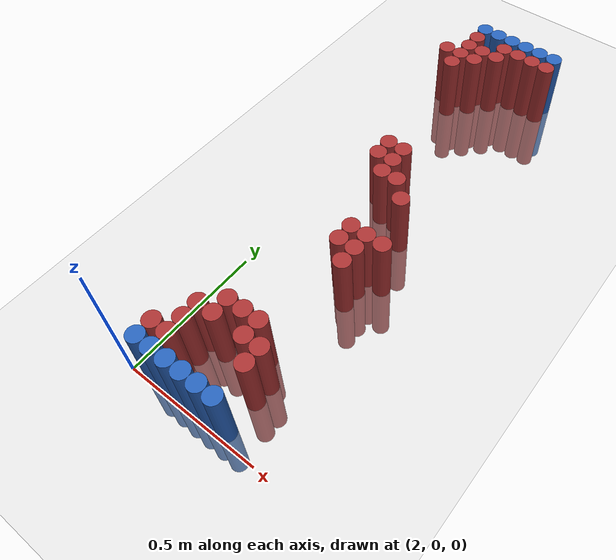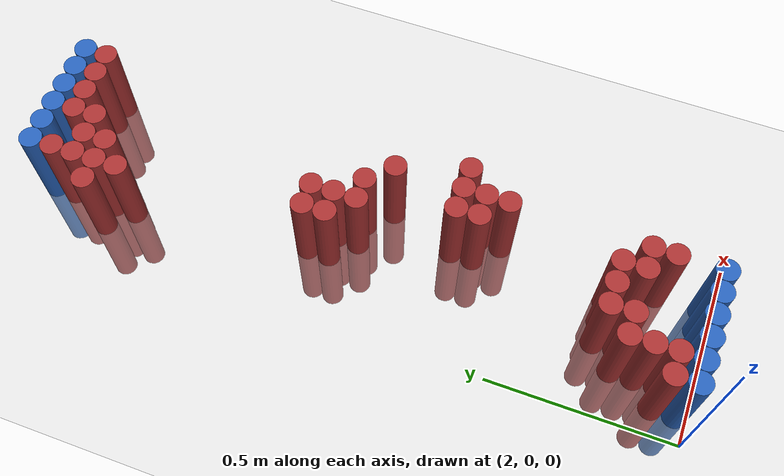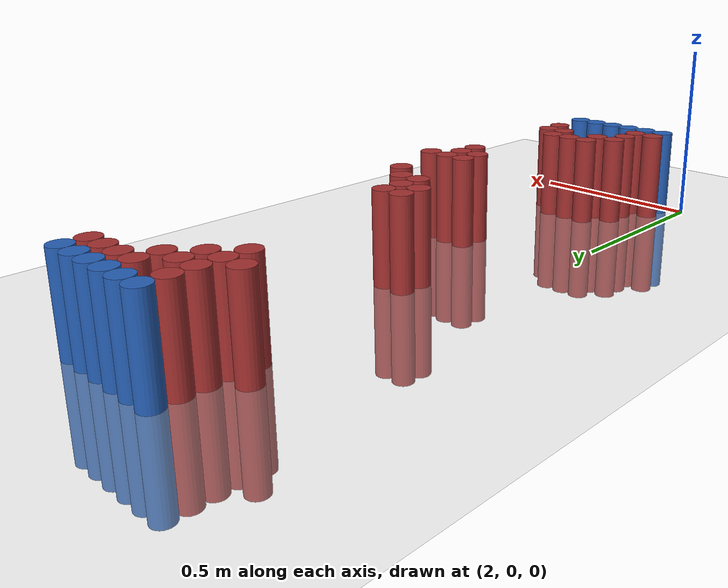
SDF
<sdf version="1.6">
 <world name="default">
  <model name="ground_plane">
   <static>1</static>
   <link name="link">
    <collision name="collision">
     <geometry><plane><normal>0 0 1</normal><size>100 100</size></plane></geometry>
     <surface><friction><ode><mu>100</mu><mu2>50</mu2></ode></friction></surface>
    </collision>
    <visual name="visual">
     <cast_shadows>0</cast_shadows>
     <geometry><plane><normal>0 0 1</normal><size>100 100</size></plane></geometry>
     <material>
      <script><uri>file://media/materials/scripts/gazebo.material</uri><name>Gazebo/Grey</name></script>
     </material>
    </visual>
   </link>
  </model>
  <model name="unit_cylinder_96">
   <static>1</static>
   <pose>2.130000 1.770000 0.000000 0.000000 0.000000 0.000000</pose>
   <link name="link">
    <inertial>
     <mass>1</mass>
     <inertia><ixx>0.145833</ixx><ixy>0</ixy><ixz>0</ixz><iyy>0.145833</iyy><iyz>0</iyz><izz>0.125</izz></inertia>
    </inertial>
    <collision name="collision">
     <geometry><cylinder><radius>0.030000</radius><length>0.5</length></cylinder></geometry>
    </collision>
    <visual name="visual">
     <geometry><cylinder><radius>0.030000</radius><length>0.5</length></cylinder></geometry>
     <material>
      <ambient>0.152000 0.379000 0.720000 1</ambient>
      <diffuse>0.152000 0.379000 0.720000 1</diffuse>
     </material>
     <material>
      <script><name>Gazebo/Grey</name><uri>file://media/materials/scripts/gazebo.material</uri></script>
     </material>
    </visual>
   </link>
  </model>
  <model name="unit_cylinder_97">
   <static>1</static>
   <pose>2.190000 1.770000 0.000000 0.000000 0.000000 0.000000</pose>
   <link name="link">
    <inertial>
     <mass>1</mass>
     <inertia><ixx>0.145833</ixx><ixy>0</ixy><ixz>0</ixz><iyy>0.145833</iyy><iyz>0</iyz><izz>0.125</izz></inertia>
    </inertial>
    <collision name="collision">
     <geometry><cylinder><radius>0.030000</radius><length>0.5</length></cylinder></geometry>
    </collision>
    <visual name="visual">
     <geometry><cylinder><radius>0.030000</radius><length>0.5</length></cylinder></geometry>
     <material>
      <ambient>0.152000 0.379000 0.720000 1</ambient>
      <diffuse>0.152000 0.379000 0.720000 1</diffuse>
     </material>
     <material>
      <script><name>Gazebo/Grey</name><uri>file://media/materials/scripts/gazebo.material</uri></script>
     </material>
    </visual>
   </link>
  </model>
  <model name="unit_cylinder_98">
   <static>1</static>
   <pose>2.250000 1.770000 0.000000 0.000000 0.000000 0.000000</pose>
   <link name="link">
    <inertial>
     <mass>1</mass>
     <inertia><ixx>0.145833</ixx><ixy>0</ixy><ixz>0</ixz><iyy>0.145833</iyy><iyz>0</iyz><izz>0.125</izz></inertia>
    </inertial>
    <collision name="collision">
     <geometry><cylinder><radius>0.030000</radius><length>0.5</length></cylinder></geometry>
    </collision>
    <visual name="visual">
     <geometry><cylinder><radius>0.030000</radius><length>0.5</length></cylinder></geometry>
     <material>
      <ambient>0.152000 0.379000 0.720000 1</ambient>
      <diffuse>0.152000 0.379000 0.720000 1</diffuse>
     </material>
     <material>
      <script><name>Gazebo/Grey</name><uri>file://media/materials/scripts/gazebo.material</uri></script>
     </material>
    </visual>
   </link>
  </model>
  <model name="unit_cylinder_99">
   <static>1</static>
   <pose>2.310000 1.770000 0.000000 0.000000 0.000000 0.000000</pose>
   <link name="link">
    <inertial>
     <mass>1</mass>
     <inertia><ixx>0.145833</ixx><ixy>0</ixy><ixz>0</ixz><iyy>0.145833</iyy><iyz>0</iyz><izz>0.125</izz></inertia>
    </inertial>
    <collision name="collision">
     <geometry><cylinder><radius>0.030000</radius><length>0.5</length></cylinder></geometry>
    </collision>
    <visual name="visual">
     <geometry><cylinder><radius>0.030000</radius><length>0.5</length></cylinder></geometry>
     <material>
      <ambient>0.152000 0.379000 0.720000 1</ambient>
      <diffuse>0.152000 0.379000 0.720000 1</diffuse>
     </material>
     <material>
      <script><name>Gazebo/Grey</name><uri>file://media/materials/scripts/gazebo.material</uri></script>
     </material>
    </visual>
   </link>
  </model>
  <model name="unit_cylinder_100">
   <static>1</static>
   <pose>2.370000 1.770000 0.000000 0.000000 0.000000 0.000000</pose>
   <link name="link">
    <inertial>
     <mass>1</mass>
     <inertia><ixx>0.145833</ixx><ixy>0</ixy><ixz>0</ixz><iyy>0.145833</iyy><iyz>0</iyz><izz>0.125</izz></inertia>
    </inertial>
    <collision name="collision">
     <geometry><cylinder><radius>0.030000</radius><length>0.5</length></cylinder></geometry>
    </collision>
    <visual name="visual">
     <geometry><cylinder><radius>0.030000</radius><length>0.5</length></cylinder></geometry>
     <material>
      <ambient>0.152000 0.379000 0.720000 1</ambient>
      <diffuse>0.152000 0.379000 0.720000 1</diffuse>
     </material>
     <material>
      <script><name>Gazebo/Grey</name><uri>file://media/materials/scripts/gazebo.material</uri></script>
     </material>
    </visual>
   </link>
  </model>
  <model name="unit_cylinder_101">
   <static>1</static>
   <pose>2.430000 1.770000 0.000000 0.000000 0.000000 0.000000</pose>
   <link name="link">
    <inertial>
     <mass>1</mass>
     <inertia><ixx>0.145833</ixx><ixy>0</ixy><ixz>0</ixz><iyy>0.145833</iyy><iyz>0</iyz><izz>0.125</izz></inertia>
    </inertial>
    <collision name="collision">
     <geometry><cylinder><radius>0.030000</radius><length>0.5</length></cylinder></geometry>
    </collision>
    <visual name="visual">
     <geometry><cylinder><radius>0.030000</radius><length>0.5</length></cylinder></geometry>
     <material>
      <ambient>0.152000 0.379000 0.720000 1</ambient>
      <diffuse>0.152000 0.379000 0.720000 1</diffuse>
     </material>
     <material>
      <script><name>Gazebo/Grey</name><uri>file://media/materials/scripts/gazebo.material</uri></script>
     </material>
    </visual>
   </link>
  </model>
  <model name="unit_cylinder_125">
   <static>1</static>
   <pose>2.130000 1.710000 0.000000 0.000000 0.000000 0.000000</pose>
   <link name="link">
    <inertial>
     <mass>1</mass>
     <inertia><ixx>0.145833</ixx><ixy>0</ixy><ixz>0</ixz><iyy>0.145833</iyy><iyz>0</iyz><izz>0.125</izz></inertia>
    </inertial>
    <collision name="collision">
     <geometry><cylinder><radius>0.030000</radius><length>0.5</length></cylinder></geometry>
    </collision>
    <visual name="visual">
     <geometry><cylinder><radius>0.030000</radius><length>0.5</length></cylinder></geometry>
     <material>
      <ambient>0.648000 0.192000 0.192000 1</ambient>
      <diffuse>0.648000 0.192000 0.192000 1</diffuse>
     </material>
     <material>
      <script><name>Gazebo/Grey</name><uri>file://media/materials/scripts/gazebo.material</uri></script>
     </material>
    </visual>
   </link>
  </model>
  <model name="unit_cylinder_126">
   <static>1</static>
   <pose>2.250000 1.710000 0.000000 0.000000 0.000000 0.000000</pose>
   <link name="link">
    <inertial>
     <mass>1</mass>
     <inertia><ixx>0.145833</ixx><ixy>0</ixy><ixz>0</ixz><iyy>0.145833</iyy><iyz>0</iyz><izz>0.125</izz></inertia>
    </inertial>
    <collision name="collision">
     <geometry><cylinder><radius>0.030000</radius><length>0.5</length></cylinder></geometry>
    </collision>
    <visual name="visual">
     <geometry><cylinder><radius>0.030000</radius><length>0.5</length></cylinder></geometry>
     <material>
      <ambient>0.648000 0.192000 0.192000 1</ambient>
      <diffuse>0.648000 0.192000 0.192000 1</diffuse>
     </material>
     <material>
      <script><name>Gazebo/Grey</name><uri>file://media/materials/scripts/gazebo.material</uri></script>
     </material>
    </visual>
   </link>
  </model>
  <model name="unit_cylinder_127">
   <static>1</static>
   <pose>2.310000 1.710000 0.000000 0.000000 0.000000 0.000000</pose>
   <link name="link">
    <inertial>
     <mass>1</mass>
     <inertia><ixx>0.145833</ixx><ixy>0</ixy><ixz>0</ixz><iyy>0.145833</iyy><iyz>0</iyz><izz>0.125</izz></inertia>
    </inertial>
    <collision name="collision">
     <geometry><cylinder><radius>0.030000</radius><length>0.5</length></cylinder></geometry>
    </collision>
    <visual name="visual">
     <geometry><cylinder><radius>0.030000</radius><length>0.5</length></cylinder></geometry>
     <material>
      <ambient>0.648000 0.192000 0.192000 1</ambient>
      <diffuse>0.648000 0.192000 0.192000 1</diffuse>
     </material>
     <material>
      <script><name>Gazebo/Grey</name><uri>file://media/materials/scripts/gazebo.material</uri></script>
     </material>
    </visual>
   </link>
  </model>
  <model name="unit_cylinder_128">
   <static>1</static>
   <pose>2.370000 1.710000 0.000000 0.000000 0.000000 0.000000</pose>
   <link name="link">
    <inertial>
     <mass>1</mass>
     <inertia><ixx>0.145833</ixx><ixy>0</ixy><ixz>0</ixz><iyy>0.145833</iyy><iyz>0</iyz><izz>0.125</izz></inertia>
    </inertial>
    <collision name="collision">
     <geometry><cylinder><radius>0.030000</radius><length>0.5</length></cylinder></geometry>
    </collision>
    <visual name="visual">
     <geometry><cylinder><radius>0.030000</radius><length>0.5</length></cylinder></geometry>
     <material>
      <ambient>0.648000 0.192000 0.192000 1</ambient>
      <diffuse>0.648000 0.192000 0.192000 1</diffuse>
     </material>
     <material>
      <script><name>Gazebo/Grey</name><uri>file://media/materials/scripts/gazebo.material</uri></script>
     </material>
    </visual>
   </link>
  </model>
  <model name="unit_cylinder_129">
   <static>1</static>
   <pose>2.430000 1.710000 0.000000 0.000000 0.000000 0.000000</pose>
   <link name="link">
    <inertial>
     <mass>1</mass>
     <inertia><ixx>0.145833</ixx><ixy>0</ixy><ixz>0</ixz><iyy>0.145833</iyy><iyz>0</iyz><izz>0.125</izz></inertia>
    </inertial>
    <collision name="collision">
     <geometry><cylinder><radius>0.030000</radius><length>0.5</length></cylinder></geometry>
    </collision>
    <visual name="visual">
     <geometry><cylinder><radius>0.030000</radius><length>0.5</length></cylinder></geometry>
     <material>
      <ambient>0.648000 0.192000 0.192000 1</ambient>
      <diffuse>0.648000 0.192000 0.192000 1</diffuse>
     </material>
     <material>
      <script><name>Gazebo/Grey</name><uri>file://media/materials/scripts/gazebo.material</uri></script>
     </material>
    </visual>
   </link>
  </model>
  <model name="unit_cylinder_144">
   <static>1</static>
   <pose>2.130000 1.650000 0.000000 0.000000 0.000000 0.000000</pose>
   <link name="link">
    <inertial>
     <mass>1</mass>
     <inertia><ixx>0.145833</ixx><ixy>0</ixy><ixz>0</ixz><iyy>0.145833</iyy><iyz>0</iyz><izz>0.125</izz></inertia>
    </inertial>
    <collision name="collision">
     <geometry><cylinder><radius>0.030000</radius><length>0.5</length></cylinder></geometry>
    </collision>
    <visual name="visual">
     <geometry><cylinder><radius>0.030000</radius><length>0.5</length></cylinder></geometry>
     <material>
      <ambient>0.648000 0.192000 0.192000 1</ambient>
      <diffuse>0.648000 0.192000 0.192000 1</diffuse>
     </material>
     <material>
      <script><name>Gazebo/Grey</name><uri>file://media/materials/scripts/gazebo.material</uri></script>
     </material>
    </visual>
   </link>
  </model>
  <model name="unit_cylinder_145">
   <static>1</static>
   <pose>2.190000 1.650000 0.000000 0.000000 0.000000 0.000000</pose>
   <link name="link">
    <inertial>
     <mass>1</mass>
     <inertia><ixx>0.145833</ixx><ixy>0</ixy><ixz>0</ixz><iyy>0.145833</iyy><iyz>0</iyz><izz>0.125</izz></inertia>
    </inertial>
    <collision name="collision">
     <geometry><cylinder><radius>0.030000</radius><length>0.5</length></cylinder></geometry>
    </collision>
    <visual name="visual">
     <geometry><cylinder><radius>0.030000</radius><length>0.5</length></cylinder></geometry>
     <material>
      <ambient>0.648000 0.192000 0.192000 1</ambient>
      <diffuse>0.648000 0.192000 0.192000 1</diffuse>
     </material>
     <material>
      <script><name>Gazebo/Grey</name><uri>file://media/materials/scripts/gazebo.material</uri></script>
     </material>
    </visual>
   </link>
  </model>
  <model name="unit_cylinder_146">
   <static>1</static>
   <pose>2.250000 1.650000 0.000000 0.000000 0.000000 0.000000</pose>
   <link name="link">
    <inertial>
     <mass>1</mass>
     <inertia><ixx>0.145833</ixx><ixy>0</ixy><ixz>0</ixz><iyy>0.145833</iyy><iyz>0</iyz><izz>0.125</izz></inertia>
    </inertial>
    <collision name="collision">
     <geometry><cylinder><radius>0.030000</radius><length>0.5</length></cylinder></geometry>
    </collision>
    <visual name="visual">
     <geometry><cylinder><radius>0.030000</radius><length>0.5</length></cylinder></geometry>
     <material>
      <ambient>0.648000 0.192000 0.192000 1</ambient>
      <diffuse>0.648000 0.192000 0.192000 1</diffuse>
     </material>
     <material>
      <script><name>Gazebo/Grey</name><uri>file://media/materials/scripts/gazebo.material</uri></script>
     </material>
    </visual>
   </link>
  </model>
  <model name="unit_cylinder_157">
   <static>1</static>
   <pose>2.070000 1.590000 0.000000 0.000000 0.000000 0.000000</pose>
   <link name="link">
    <inertial>
     <mass>1</mass>
     <inertia><ixx>0.145833</ixx><ixy>0</ixy><ixz>0</ixz><iyy>0.145833</iyy><iyz>0</iyz><izz>0.125</izz></inertia>
    </inertial>
    <collision name="collision">
     <geometry><cylinder><radius>0.030000</radius><length>0.5</length></cylinder></geometry>
    </collision>
    <visual name="visual">
     <geometry><cylinder><radius>0.030000</radius><length>0.5</length></cylinder></geometry>
     <material>
      <ambient>0.648000 0.192000 0.192000 1</ambient>
      <diffuse>0.648000 0.192000 0.192000 1</diffuse>
     </material>
     <material>
      <script><name>Gazebo/Grey</name><uri>file://media/materials/scripts/gazebo.material</uri></script>
     </material>
    </visual>
   </link>
  </model>
  <model name="unit_cylinder_158">
   <static>1</static>
   <pose>2.130000 1.590000 0.000000 0.000000 0.000000 0.000000</pose>
   <link name="link">
    <inertial>
     <mass>1</mass>
     <inertia><ixx>0.145833</ixx><ixy>0</ixy><ixz>0</ixz><iyy>0.145833</iyy><iyz>0</iyz><izz>0.125</izz></inertia>
    </inertial>
    <collision name="collision">
     <geometry><cylinder><radius>0.030000</radius><length>0.5</length></cylinder></geometry>
    </collision>
    <visual name="visual">
     <geometry><cylinder><radius>0.030000</radius><length>0.5</length></cylinder></geometry>
     <material>
      <ambient>0.648000 0.192000 0.192000 1</ambient>
      <diffuse>0.648000 0.192000 0.192000 1</diffuse>
     </material>
     <material>
      <script><name>Gazebo/Grey</name><uri>file://media/materials/scripts/gazebo.material</uri></script>
     </material>
    </visual>
   </link>
  </model>
  <model name="unit_cylinder_159">
   <static>1</static>
   <pose>2.190000 1.590000 0.000000 0.000000 0.000000 0.000000</pose>
   <link name="link">
    <inertial>
     <mass>1</mass>
     <inertia><ixx>0.145833</ixx><ixy>0</ixy><ixz>0</ixz><iyy>0.145833</iyy><iyz>0</iyz><izz>0.125</izz></inertia>
    </inertial>
    <collision name="collision">
     <geometry><cylinder><radius>0.030000</radius><length>0.5</length></cylinder></geometry>
    </collision>
    <visual name="visual">
     <geometry><cylinder><radius>0.030000</radius><length>0.5</length></cylinder></geometry>
     <material>
      <ambient>0.648000 0.192000 0.192000 1</ambient>
      <diffuse>0.648000 0.192000 0.192000 1</diffuse>
     </material>
     <material>
      <script><name>Gazebo/Grey</name><uri>file://media/materials/scripts/gazebo.material</uri></script>
     </material>
    </visual>
   </link>
  </model>
  <model name="unit_cylinder_164">
   <static>1</static>
   <pose>2.130000 1.530000 0.000000 0.000000 0.000000 0.000000</pose>
   <link name="link">
    <inertial>
     <mass>1</mass>
     <inertia><ixx>0.145833</ixx><ixy>0</ixy><ixz>0</ixz><iyy>0.145833</iyy><iyz>0</iyz><izz>0.125</izz></inertia>
    </inertial>
    <collision name="collision">
     <geometry><cylinder><radius>0.030000</radius><length>0.5</length></cylinder></geometry>
    </collision>
    <visual name="visual">
     <geometry><cylinder><radius>0.030000</radius><length>0.5</length></cylinder></geometry>
     <material>
      <ambient>0.648000 0.192000 0.192000 1</ambient>
      <diffuse>0.648000 0.192000 0.192000 1</diffuse>
     </material>
     <material>
      <script><name>Gazebo/Grey</name><uri>file://media/materials/scripts/gazebo.material</uri></script>
     </material>
    </visual>
   </link>
  </model>
  <model name="unit_cylinder_184">
   <static>1</static>
   <pose>2.190000 1.050000 0.000000 0.000000 0.000000 0.000000</pose>
   <link name="link">
    <inertial>
     <mass>1</mass>
     <inertia><ixx>0.145833</ixx><ixy>0</ixy><ixz>0</ixz><iyy>0.145833</iyy><iyz>0</iyz><izz>0.125</izz></inertia>
    </inertial>
    <collision name="collision">
     <geometry><cylinder><radius>0.030000</radius><length>0.5</length></cylinder></geometry>
    </collision>
    <visual name="visual">
     <geometry><cylinder><radius>0.030000</radius><length>0.5</length></cylinder></geometry>
     <material>
      <ambient>0.648000 0.192000 0.192000 1</ambient>
      <diffuse>0.648000 0.192000 0.192000 1</diffuse>
     </material>
     <material>
      <script><name>Gazebo/Grey</name><uri>file://media/materials/scripts/gazebo.material</uri></script>
     </material>
    </visual>
   </link>
  </model>
  <model name="unit_cylinder_185">
   <static>1</static>
   <pose>2.250000 1.050000 0.000000 0.000000 0.000000 0.000000</pose>
   <link name="link">
    <inertial>
     <mass>1</mass>
     <inertia><ixx>0.145833</ixx><ixy>0</ixy><ixz>0</ixz><iyy>0.145833</iyy><iyz>0</iyz><izz>0.125</izz></inertia>
    </inertial>
    <collision name="collision">
     <geometry><cylinder><radius>0.030000</radius><length>0.5</length></cylinder></geometry>
    </collision>
    <visual name="visual">
     <geometry><cylinder><radius>0.030000</radius><length>0.5</length></cylinder></geometry>
     <material>
      <ambient>0.648000 0.192000 0.192000 1</ambient>
      <diffuse>0.648000 0.192000 0.192000 1</diffuse>
     </material>
     <material>
      <script><name>Gazebo/Grey</name><uri>file://media/materials/scripts/gazebo.material</uri></script>
     </material>
    </visual>
   </link>
  </model>
  <model name="unit_cylinder_191">
   <static>1</static>
   <pose>2.190000 0.990000 0.000000 0.000000 0.000000 0.000000</pose>
   <link name="link">
    <inertial>
     <mass>1</mass>
     <inertia><ixx>0.145833</ixx><ixy>0</ixy><ixz>0</ixz><iyy>0.145833</iyy><iyz>0</iyz><izz>0.125</izz></inertia>
    </inertial>
    <collision name="collision">
     <geometry><cylinder><radius>0.030000</radius><length>0.5</length></cylinder></geometry>
    </collision>
    <visual name="visual">
     <geometry><cylinder><radius>0.030000</radius><length>0.5</length></cylinder></geometry>
     <material>
      <ambient>0.648000 0.192000 0.192000 1</ambient>
      <diffuse>0.648000 0.192000 0.192000 1</diffuse>
     </material>
     <material>
      <script><name>Gazebo/Grey</name><uri>file://media/materials/scripts/gazebo.material</uri></script>
     </material>
    </visual>
   </link>
  </model>
  <model name="unit_cylinder_192">
   <static>1</static>
   <pose>2.250000 0.990000 0.000000 0.000000 0.000000 0.000000</pose>
   <link name="link">
    <inertial>
     <mass>1</mass>
     <inertia><ixx>0.145833</ixx><ixy>0</ixy><ixz>0</ixz><iyy>0.145833</iyy><iyz>0</iyz><izz>0.125</izz></inertia>
    </inertial>
    <collision name="collision">
     <geometry><cylinder><radius>0.030000</radius><length>0.5</length></cylinder></geometry>
    </collision>
    <visual name="visual">
     <geometry><cylinder><radius>0.030000</radius><length>0.5</length></cylinder></geometry>
     <material>
      <ambient>0.648000 0.192000 0.192000 1</ambient>
      <diffuse>0.648000 0.192000 0.192000 1</diffuse>
     </material>
     <material>
      <script><name>Gazebo/Grey</name><uri>file://media/materials/scripts/gazebo.material</uri></script>
     </material>
    </visual>
   </link>
  </model>
  <model name="unit_cylinder_199">
   <static>1</static>
   <pose>2.250000 0.930000 0.000000 0.000000 0.000000 0.000000</pose>
   <link name="link">
    <inertial>
     <mass>1</mass>
     <inertia><ixx>0.145833</ixx><ixy>0</ixy><ixz>0</ixz><iyy>0.145833</iyy><iyz>0</iyz><izz>0.125</izz></inertia>
    </inertial>
    <collision name="collision">
     <geometry><cylinder><radius>0.030000</radius><length>0.5</length></cylinder></geometry>
    </collision>
    <visual name="visual">
     <geometry><cylinder><radius>0.030000</radius><length>0.5</length></cylinder></geometry>
     <material>
      <ambient>0.648000 0.192000 0.192000 1</ambient>
      <diffuse>0.648000 0.192000 0.192000 1</diffuse>
     </material>
     <material>
      <script><name>Gazebo/Grey</name><uri>file://media/materials/scripts/gazebo.material</uri></script>
     </material>
    </visual>
   </link>
  </model>
  <model name="unit_cylinder_200">
   <static>1</static>
   <pose>2.310000 0.930000 0.000000 0.000000 0.000000 0.000000</pose>
   <link name="link">
    <inertial>
     <mass>1</mass>
     <inertia><ixx>0.145833</ixx><ixy>0</ixy><ixz>0</ixz><iyy>0.145833</iyy><iyz>0</iyz><izz>0.125</izz></inertia>
    </inertial>
    <collision name="collision">
     <geometry><cylinder><radius>0.030000</radius><length>0.5</length></cylinder></geometry>
    </collision>
    <visual name="visual">
     <geometry><cylinder><radius>0.030000</radius><length>0.5</length></cylinder></geometry>
     <material>
      <ambient>0.648000 0.192000 0.192000 1</ambient>
      <diffuse>0.648000 0.192000 0.192000 1</diffuse>
     </material>
     <material>
      <script><name>Gazebo/Grey</name><uri>file://media/materials/scripts/gazebo.material</uri></script>
     </material>
    </visual>
   </link>
  </model>
  <model name="unit_cylinder_207">
   <static>1</static>
   <pose>2.370000 0.870000 0.000000 0.000000 0.000000 0.000000</pose>
   <link name="link">
    <inertial>
     <mass>1</mass>
     <inertia><ixx>0.145833</ixx><ixy>0</ixy><ixz>0</ixz><iyy>0.145833</iyy><iyz>0</iyz><izz>0.125</izz></inertia>
    </inertial>
    <collision name="collision">
     <geometry><cylinder><radius>0.030000</radius><length>0.5</length></cylinder></geometry>
    </collision>
    <visual name="visual">
     <geometry><cylinder><radius>0.030000</radius><length>0.5</length></cylinder></geometry>
     <material>
      <ambient>0.648000 0.192000 0.192000 1</ambient>
      <diffuse>0.648000 0.192000 0.192000 1</diffuse>
     </material>
     <material>
      <script><name>Gazebo/Grey</name><uri>file://media/materials/scripts/gazebo.material</uri></script>
     </material>
    </visual>
   </link>
  </model>
  <model name="unit_cylinder_228">
   <static>1</static>
   <pose>2.310000 0.690000 0.000000 0.000000 0.000000 0.000000</pose>
   <link name="link">
    <inertial>
     <mass>1</mass>
     <inertia><ixx>0.145833</ixx><ixy>0</ixy><ixz>0</ixz><iyy>0.145833</iyy><iyz>0</iyz><izz>0.125</izz></inertia>
    </inertial>
    <collision name="collision">
     <geometry><cylinder><radius>0.030000</radius><length>0.5</length></cylinder></geometry>
    </collision>
    <visual name="visual">
     <geometry><cylinder><radius>0.030000</radius><length>0.5</length></cylinder></geometry>
     <material>
      <ambient>0.648000 0.192000 0.192000 1</ambient>
      <diffuse>0.648000 0.192000 0.192000 1</diffuse>
     </material>
     <material>
      <script><name>Gazebo/Grey</name><uri>file://media/materials/scripts/gazebo.material</uri></script>
     </material>
    </visual>
   </link>
  </model>
  <model name="unit_cylinder_229">
   <static>1</static>
   <pose>2.370000 0.690000 0.000000 0.000000 0.000000 0.000000</pose>
   <link name="link">
    <inertial>
     <mass>1</mass>
     <inertia><ixx>0.145833</ixx><ixy>0</ixy><ixz>0</ixz><iyy>0.145833</iyy><iyz>0</iyz><izz>0.125</izz></inertia>
    </inertial>
    <collision name="collision">
     <geometry><cylinder><radius>0.030000</radius><length>0.5</length></cylinder></geometry>
    </collision>
    <visual name="visual">
     <geometry><cylinder><radius>0.030000</radius><length>0.5</length></cylinder></geometry>
     <material>
      <ambient>0.648000 0.192000 0.192000 1</ambient>
      <diffuse>0.648000 0.192000 0.192000 1</diffuse>
     </material>
     <material>
      <script><name>Gazebo/Grey</name><uri>file://media/materials/scripts/gazebo.material</uri></script>
     </material>
    </visual>
   </link>
  </model>
  <model name="unit_cylinder_230">
   <static>1</static>
   <pose>2.430000 0.690000 0.000000 0.000000 0.000000 0.000000</pose>
   <link name="link">
    <inertial>
     <mass>1</mass>
     <inertia><ixx>0.145833</ixx><ixy>0</ixy><ixz>0</ixz><iyy>0.145833</iyy><iyz>0</iyz><izz>0.125</izz></inertia>
    </inertial>
    <collision name="collision">
     <geometry><cylinder><radius>0.030000</radius><length>0.5</length></cylinder></geometry>
    </collision>
    <visual name="visual">
     <geometry><cylinder><radius>0.030000</radius><length>0.5</length></cylinder></geometry>
     <material>
      <ambient>0.648000 0.192000 0.192000 1</ambient>
      <diffuse>0.648000 0.192000 0.192000 1</diffuse>
     </material>
     <material>
      <script><name>Gazebo/Grey</name><uri>file://media/materials/scripts/gazebo.material</uri></script>
     </material>
    </visual>
   </link>
  </model>
  <model name="unit_cylinder_236">
   <static>1</static>
   <pose>2.310000 0.630000 0.000000 0.000000 0.000000 0.000000</pose>
   <link name="link">
    <inertial>
     <mass>1</mass>
     <inertia><ixx>0.145833</ixx><ixy>0</ixy><ixz>0</ixz><iyy>0.145833</iyy><iyz>0</iyz><izz>0.125</izz></inertia>
    </inertial>
    <collision name="collision">
     <geometry><cylinder><radius>0.030000</radius><length>0.5</length></cylinder></geometry>
    </collision>
    <visual name="visual">
     <geometry><cylinder><radius>0.030000</radius><length>0.5</length></cylinder></geometry>
     <material>
      <ambient>0.648000 0.192000 0.192000 1</ambient>
      <diffuse>0.648000 0.192000 0.192000 1</diffuse>
     </material>
     <material>
      <script><name>Gazebo/Grey</name><uri>file://media/materials/scripts/gazebo.material</uri></script>
     </material>
    </visual>
   </link>
  </model>
  <model name="unit_cylinder_237">
   <static>1</static>
   <pose>2.370000 0.630000 0.000000 0.000000 0.000000 0.000000</pose>
   <link name="link">
    <inertial>
     <mass>1</mass>
     <inertia><ixx>0.145833</ixx><ixy>0</ixy><ixz>0</ixz><iyy>0.145833</iyy><iyz>0</iyz><izz>0.125</izz></inertia>
    </inertial>
    <collision name="collision">
     <geometry><cylinder><radius>0.030000</radius><length>0.5</length></cylinder></geometry>
    </collision>
    <visual name="visual">
     <geometry><cylinder><radius>0.030000</radius><length>0.5</length></cylinder></geometry>
     <material>
      <ambient>0.648000 0.192000 0.192000 1</ambient>
      <diffuse>0.648000 0.192000 0.192000 1</diffuse>
     </material>
     <material>
      <script><name>Gazebo/Grey</name><uri>file://media/materials/scripts/gazebo.material</uri></script>
     </material>
    </visual>
   </link>
  </model>
  <model name="unit_cylinder_244">
   <static>1</static>
   <pose>2.370000 0.570000 0.000000 0.000000 0.000000 0.000000</pose>
   <link name="link">
    <inertial>
     <mass>1</mass>
     <inertia><ixx>0.145833</ixx><ixy>0</ixy><ixz>0</ixz><iyy>0.145833</iyy><iyz>0</iyz><izz>0.125</izz></inertia>
    </inertial>
    <collision name="collision">
     <geometry><cylinder><radius>0.030000</radius><length>0.5</length></cylinder></geometry>
    </collision>
    <visual name="visual">
     <geometry><cylinder><radius>0.030000</radius><length>0.5</length></cylinder></geometry>
     <material>
      <ambient>0.648000 0.192000 0.192000 1</ambient>
      <diffuse>0.648000 0.192000 0.192000 1</diffuse>
     </material>
     <material>
      <script><name>Gazebo/Grey</name><uri>file://media/materials/scripts/gazebo.material</uri></script>
     </material>
    </visual>
   </link>
  </model>
  <model name="unit_cylinder_263">
   <static>1</static>
   <pose>2.190000 0.270000 0.000000 0.000000 0.000000 0.000000</pose>
   <link name="link">
    <inertial>
     <mass>1</mass>
     <inertia><ixx>0.145833</ixx><ixy>0</ixy><ixz>0</ixz><iyy>0.145833</iyy><iyz>0</iyz><izz>0.125</izz></inertia>
    </inertial>
    <collision name="collision">
     <geometry><cylinder><radius>0.030000</radius><length>0.5</length></cylinder></geometry>
    </collision>
    <visual name="visual">
     <geometry><cylinder><radius>0.030000</radius><length>0.5</length></cylinder></geometry>
     <material>
      <ambient>0.648000 0.192000 0.192000 1</ambient>
      <diffuse>0.648000 0.192000 0.192000 1</diffuse>
     </material>
     <material>
      <script><name>Gazebo/Grey</name><uri>file://media/materials/scripts/gazebo.material</uri></script>
     </material>
    </visual>
   </link>
  </model>
  <model name="unit_cylinder_264">
   <static>1</static>
   <pose>2.250000 0.270000 0.000000 0.000000 0.000000 0.000000</pose>
   <link name="link">
    <inertial>
     <mass>1</mass>
     <inertia><ixx>0.145833</ixx><ixy>0</ixy><ixz>0</ixz><iyy>0.145833</iyy><iyz>0</iyz><izz>0.125</izz></inertia>
    </inertial>
    <collision name="collision">
     <geometry><cylinder><radius>0.030000</radius><length>0.5</length></cylinder></geometry>
    </collision>
    <visual name="visual">
     <geometry><cylinder><radius>0.030000</radius><length>0.5</length></cylinder></geometry>
     <material>
      <ambient>0.648000 0.192000 0.192000 1</ambient>
      <diffuse>0.648000 0.192000 0.192000 1</diffuse>
     </material>
     <material>
      <script><name>Gazebo/Grey</name><uri>file://media/materials/scripts/gazebo.material</uri></script>
     </material>
    </visual>
   </link>
  </model>
  <model name="unit_cylinder_265">
   <static>1</static>
   <pose>2.310000 0.270000 0.000000 0.000000 0.000000 0.000000</pose>
   <link name="link">
    <inertial>
     <mass>1</mass>
     <inertia><ixx>0.145833</ixx><ixy>0</ixy><ixz>0</ixz><iyy>0.145833</iyy><iyz>0</iyz><izz>0.125</izz></inertia>
    </inertial>
    <collision name="collision">
     <geometry><cylinder><radius>0.030000</radius><length>0.5</length></cylinder></geometry>
    </collision>
    <visual name="visual">
     <geometry><cylinder><radius>0.030000</radius><length>0.5</length></cylinder></geometry>
     <material>
      <ambient>0.648000 0.192000 0.192000 1</ambient>
      <diffuse>0.648000 0.192000 0.192000 1</diffuse>
     </material>
     <material>
      <script><name>Gazebo/Grey</name><uri>file://media/materials/scripts/gazebo.material</uri></script>
     </material>
    </visual>
   </link>
  </model>
  <model name="unit_cylinder_272">
   <static>1</static>
   <pose>2.130000 0.210000 0.000000 0.000000 0.000000 0.000000</pose>
   <link name="link">
    <inertial>
     <mass>1</mass>
     <inertia><ixx>0.145833</ixx><ixy>0</ixy><ixz>0</ixz><iyy>0.145833</iyy><iyz>0</iyz><izz>0.125</izz></inertia>
    </inertial>
    <collision name="collision">
     <geometry><cylinder><radius>0.030000</radius><length>0.5</length></cylinder></geometry>
    </collision>
    <visual name="visual">
     <geometry><cylinder><radius>0.030000</radius><length>0.5</length></cylinder></geometry>
     <material>
      <ambient>0.648000 0.192000 0.192000 1</ambient>
      <diffuse>0.648000 0.192000 0.192000 1</diffuse>
     </material>
     <material>
      <script><name>Gazebo/Grey</name><uri>file://media/materials/scripts/gazebo.material</uri></script>
     </material>
    </visual>
   </link>
  </model>
  <model name="unit_cylinder_273">
   <static>1</static>
   <pose>2.190000 0.210000 0.000000 0.000000 0.000000 0.000000</pose>
   <link name="link">
    <inertial>
     <mass>1</mass>
     <inertia><ixx>0.145833</ixx><ixy>0</ixy><ixz>0</ixz><iyy>0.145833</iyy><iyz>0</iyz><izz>0.125</izz></inertia>
    </inertial>
    <collision name="collision">
     <geometry><cylinder><radius>0.030000</radius><length>0.5</length></cylinder></geometry>
    </collision>
    <visual name="visual">
     <geometry><cylinder><radius>0.030000</radius><length>0.5</length></cylinder></geometry>
     <material>
      <ambient>0.648000 0.192000 0.192000 1</ambient>
      <diffuse>0.648000 0.192000 0.192000 1</diffuse>
     </material>
     <material>
      <script><name>Gazebo/Grey</name><uri>file://media/materials/scripts/gazebo.material</uri></script>
     </material>
    </visual>
   </link>
  </model>
  <model name="unit_cylinder_274">
   <static>1</static>
   <pose>2.310000 0.210000 0.000000 0.000000 0.000000 0.000000</pose>
   <link name="link">
    <inertial>
     <mass>1</mass>
     <inertia><ixx>0.145833</ixx><ixy>0</ixy><ixz>0</ixz><iyy>0.145833</iyy><iyz>0</iyz><izz>0.125</izz></inertia>
    </inertial>
    <collision name="collision">
     <geometry><cylinder><radius>0.030000</radius><length>0.5</length></cylinder></geometry>
    </collision>
    <visual name="visual">
     <geometry><cylinder><radius>0.030000</radius><length>0.5</length></cylinder></geometry>
     <material>
      <ambient>0.648000 0.192000 0.192000 1</ambient>
      <diffuse>0.648000 0.192000 0.192000 1</diffuse>
     </material>
     <material>
      <script><name>Gazebo/Grey</name><uri>file://media/materials/scripts/gazebo.material</uri></script>
     </material>
    </visual>
   </link>
  </model>
  <model name="unit_cylinder_275">
   <static>1</static>
   <pose>2.370000 0.210000 0.000000 0.000000 0.000000 0.000000</pose>
   <link name="link">
    <inertial>
     <mass>1</mass>
     <inertia><ixx>0.145833</ixx><ixy>0</ixy><ixz>0</ixz><iyy>0.145833</iyy><iyz>0</iyz><izz>0.125</izz></inertia>
    </inertial>
    <collision name="collision">
     <geometry><cylinder><radius>0.030000</radius><length>0.5</length></cylinder></geometry>
    </collision>
    <visual name="visual">
     <geometry><cylinder><radius>0.030000</radius><length>0.5</length></cylinder></geometry>
     <material>
      <ambient>0.648000 0.192000 0.192000 1</ambient>
      <diffuse>0.648000 0.192000 0.192000 1</diffuse>
     </material>
     <material>
      <script><name>Gazebo/Grey</name><uri>file://media/materials/scripts/gazebo.material</uri></script>
     </material>
    </visual>
   </link>
  </model>
  <model name="unit_cylinder_283">
   <static>1</static>
   <pose>2.130000 0.150000 0.000000 0.000000 0.000000 0.000000</pose>
   <link name="link">
    <inertial>
     <mass>1</mass>
     <inertia><ixx>0.145833</ixx><ixy>0</ixy><ixz>0</ixz><iyy>0.145833</iyy><iyz>0</iyz><izz>0.125</izz></inertia>
    </inertial>
    <collision name="collision">
     <geometry><cylinder><radius>0.030000</radius><length>0.5</length></cylinder></geometry>
    </collision>
    <visual name="visual">
     <geometry><cylinder><radius>0.030000</radius><length>0.5</length></cylinder></geometry>
     <material>
      <ambient>0.648000 0.192000 0.192000 1</ambient>
      <diffuse>0.648000 0.192000 0.192000 1</diffuse>
     </material>
     <material>
      <script><name>Gazebo/Grey</name><uri>file://media/materials/scripts/gazebo.material</uri></script>
     </material>
    </visual>
   </link>
  </model>
  <model name="unit_cylinder_284">
   <static>1</static>
   <pose>2.370000 0.150000 0.000000 0.000000 0.000000 0.000000</pose>
   <link name="link">
    <inertial>
     <mass>1</mass>
     <inertia><ixx>0.145833</ixx><ixy>0</ixy><ixz>0</ixz><iyy>0.145833</iyy><iyz>0</iyz><izz>0.125</izz></inertia>
    </inertial>
    <collision name="collision">
     <geometry><cylinder><radius>0.030000</radius><length>0.5</length></cylinder></geometry>
    </collision>
    <visual name="visual">
     <geometry><cylinder><radius>0.030000</radius><length>0.5</length></cylinder></geometry>
     <material>
      <ambient>0.648000 0.192000 0.192000 1</ambient>
      <diffuse>0.648000 0.192000 0.192000 1</diffuse>
     </material>
     <material>
      <script><name>Gazebo/Grey</name><uri>file://media/materials/scripts/gazebo.material</uri></script>
     </material>
    </visual>
   </link>
  </model>
  <model name="unit_cylinder_297">
   <static>1</static>
   <pose>2.070000 0.090000 0.000000 0.000000 0.000000 0.000000</pose>
   <link name="link">
    <inertial>
     <mass>1</mass>
     <inertia><ixx>0.145833</ixx><ixy>0</ixy><ixz>0</ixz><iyy>0.145833</iyy><iyz>0</iyz><izz>0.125</izz></inertia>
    </inertial>
    <collision name="collision">
     <geometry><cylinder><radius>0.030000</radius><length>0.5</length></cylinder></geometry>
    </collision>
    <visual name="visual">
     <geometry><cylinder><radius>0.030000</radius><length>0.5</length></cylinder></geometry>
     <material>
      <ambient>0.648000 0.192000 0.192000 1</ambient>
      <diffuse>0.648000 0.192000 0.192000 1</diffuse>
     </material>
     <material>
      <script><name>Gazebo/Grey</name><uri>file://media/materials/scripts/gazebo.material</uri></script>
     </material>
    </visual>
   </link>
  </model>
  <model name="unit_cylinder_298">
   <static>1</static>
   <pose>2.130000 0.090000 0.000000 0.000000 0.000000 0.000000</pose>
   <link name="link">
    <inertial>
     <mass>1</mass>
     <inertia><ixx>0.145833</ixx><ixy>0</ixy><ixz>0</ixz><iyy>0.145833</iyy><iyz>0</iyz><izz>0.125</izz></inertia>
    </inertial>
    <collision name="collision">
     <geometry><cylinder><radius>0.030000</radius><length>0.5</length></cylinder></geometry>
    </collision>
    <visual name="visual">
     <geometry><cylinder><radius>0.030000</radius><length>0.5</length></cylinder></geometry>
     <material>
      <ambient>0.648000 0.192000 0.192000 1</ambient>
      <diffuse>0.648000 0.192000 0.192000 1</diffuse>
     </material>
     <material>
      <script><name>Gazebo/Grey</name><uri>file://media/materials/scripts/gazebo.material</uri></script>
     </material>
    </visual>
   </link>
  </model>
  <model name="unit_cylinder_305">
   <static>1</static>
   <pose>2.070000 0.030000 0.000000 0.000000 0.000000 0.000000</pose>
   <link name="link">
    <inertial>
     <mass>1</mass>
     <inertia><ixx>0.145833</ixx><ixy>0</ixy><ixz>0</ixz><iyy>0.145833</iyy><iyz>0</iyz><izz>0.125</izz></inertia>
    </inertial>
    <collision name="collision">
     <geometry><cylinder><radius>0.030000</radius><length>0.5</length></cylinder></geometry>
    </collision>
    <visual name="visual">
     <geometry><cylinder><radius>0.030000</radius><length>0.5</length></cylinder></geometry>
     <material>
      <ambient>0.152000 0.379000 0.720000 1</ambient>
      <diffuse>0.152000 0.379000 0.720000 1</diffuse>
     </material>
     <material>
      <script><name>Gazebo/Grey</name><uri>file://media/materials/scripts/gazebo.material</uri></script>
     </material>
    </visual>
   </link>
  </model>
  <model name="unit_cylinder_306">
   <static>1</static>
   <pose>2.130000 0.030000 0.000000 0.000000 0.000000 0.000000</pose>
   <link name="link">
    <inertial>
     <mass>1</mass>
     <inertia><ixx>0.145833</ixx><ixy>0</ixy><ixz>0</ixz><iyy>0.145833</iyy><iyz>0</iyz><izz>0.125</izz></inertia>
    </inertial>
    <collision name="collision">
     <geometry><cylinder><radius>0.030000</radius><length>0.5</length></cylinder></geometry>
    </collision>
    <visual name="visual">
     <geometry><cylinder><radius>0.030000</radius><length>0.5</length></cylinder></geometry>
     <material>
      <ambient>0.152000 0.379000 0.720000 1</ambient>
      <diffuse>0.152000 0.379000 0.720000 1</diffuse>
     </material>
     <material>
      <script><name>Gazebo/Grey</name><uri>file://media/materials/scripts/gazebo.material</uri></script>
     </material>
    </visual>
   </link>
  </model>
  <model name="unit_cylinder_307">
   <static>1</static>
   <pose>2.190000 0.030000 0.000000 0.000000 0.000000 0.000000</pose>
   <link name="link">
    <inertial>
     <mass>1</mass>
     <inertia><ixx>0.145833</ixx><ixy>0</ixy><ixz>0</ixz><iyy>0.145833</iyy><iyz>0</iyz><izz>0.125</izz></inertia>
    </inertial>
    <collision name="collision">
     <geometry><cylinder><radius>0.030000</radius><length>0.5</length></cylinder></geometry>
    </collision>
    <visual name="visual">
     <geometry><cylinder><radius>0.030000</radius><length>0.5</length></cylinder></geometry>
     <material>
      <ambient>0.152000 0.379000 0.720000 1</ambient>
      <diffuse>0.152000 0.379000 0.720000 1</diffuse>
     </material>
     <material>
      <script><name>Gazebo/Grey</name><uri>file://media/materials/scripts/gazebo.material</uri></script>
     </material>
    </visual>
   </link>
  </model>
  <model name="unit_cylinder_308">
   <static>1</static>
   <pose>2.250000 0.030000 0.000000 0.000000 0.000000 0.000000</pose>
   <link name="link">
    <inertial>
     <mass>1</mass>
     <inertia><ixx>0.145833</ixx><ixy>0</ixy><ixz>0</ixz><iyy>0.145833</iyy><iyz>0</iyz><izz>0.125</izz></inertia>
    </inertial>
    <collision name="collision">
     <geometry><cylinder><radius>0.030000</radius><length>0.5</length></cylinder></geometry>
    </collision>
    <visual name="visual">
     <geometry><cylinder><radius>0.030000</radius><length>0.5</length></cylinder></geometry>
     <material>
      <ambient>0.152000 0.379000 0.720000 1</ambient>
      <diffuse>0.152000 0.379000 0.720000 1</diffuse>
     </material>
     <material>
      <script><name>Gazebo/Grey</name><uri>file://media/materials/scripts/gazebo.material</uri></script>
     </material>
    </visual>
   </link>
  </model>
  <model name="unit_cylinder_309">
   <static>1</static>
   <pose>2.310000 0.030000 0.000000 0.000000 0.000000 0.000000</pose>
   <link name="link">
    <inertial>
     <mass>1</mass>
     <inertia><ixx>0.145833</ixx><ixy>0</ixy><ixz>0</ixz><iyy>0.145833</iyy><iyz>0</iyz><izz>0.125</izz></inertia>
    </inertial>
    <collision name="collision">
     <geometry><cylinder><radius>0.030000</radius><length>0.5</length></cylinder></geometry>
    </collision>
    <visual name="visual">
     <geometry><cylinder><radius>0.030000</radius><length>0.5</length></cylinder></geometry>
     <material>
      <ambient>0.152000 0.379000 0.720000 1</ambient>
      <diffuse>0.152000 0.379000 0.720000 1</diffuse>
     </material>
     <material>
      <script><name>Gazebo/Grey</name><uri>file://media/materials/scripts/gazebo.material</uri></script>
     </material>
    </visual>
   </link>
  </model>
  <model name="unit_cylinder_310">
   <static>1</static>
   <pose>2.370000 0.030000 0.000000 0.000000 0.000000 0.000000</pose>
   <link name="link">
    <inertial>
     <mass>1</mass>
     <inertia><ixx>0.145833</ixx><ixy>0</ixy><ixz>0</ixz><iyy>0.145833</iyy><iyz>0</iyz><izz>0.125</izz></inertia>
    </inertial>
    <collision name="collision">
     <geometry><cylinder><radius>0.030000</radius><length>0.5</length></cylinder></geometry>
    </collision>
    <visual name="visual">
     <geometry><cylinder><radius>0.030000</radius><length>0.5</length></cylinder></geometry>
     <material>
      <ambient>0.152000 0.379000 0.720000 1</ambient>
      <diffuse>0.152000 0.379000 0.720000 1</diffuse>
     </material>
     <material>
      <script><name>Gazebo/Grey</name><uri>file://media/materials/scripts/gazebo.material</uri></script>
     </material>
    </visual>
   </link>
  </model>
 </world>
</sdf>
